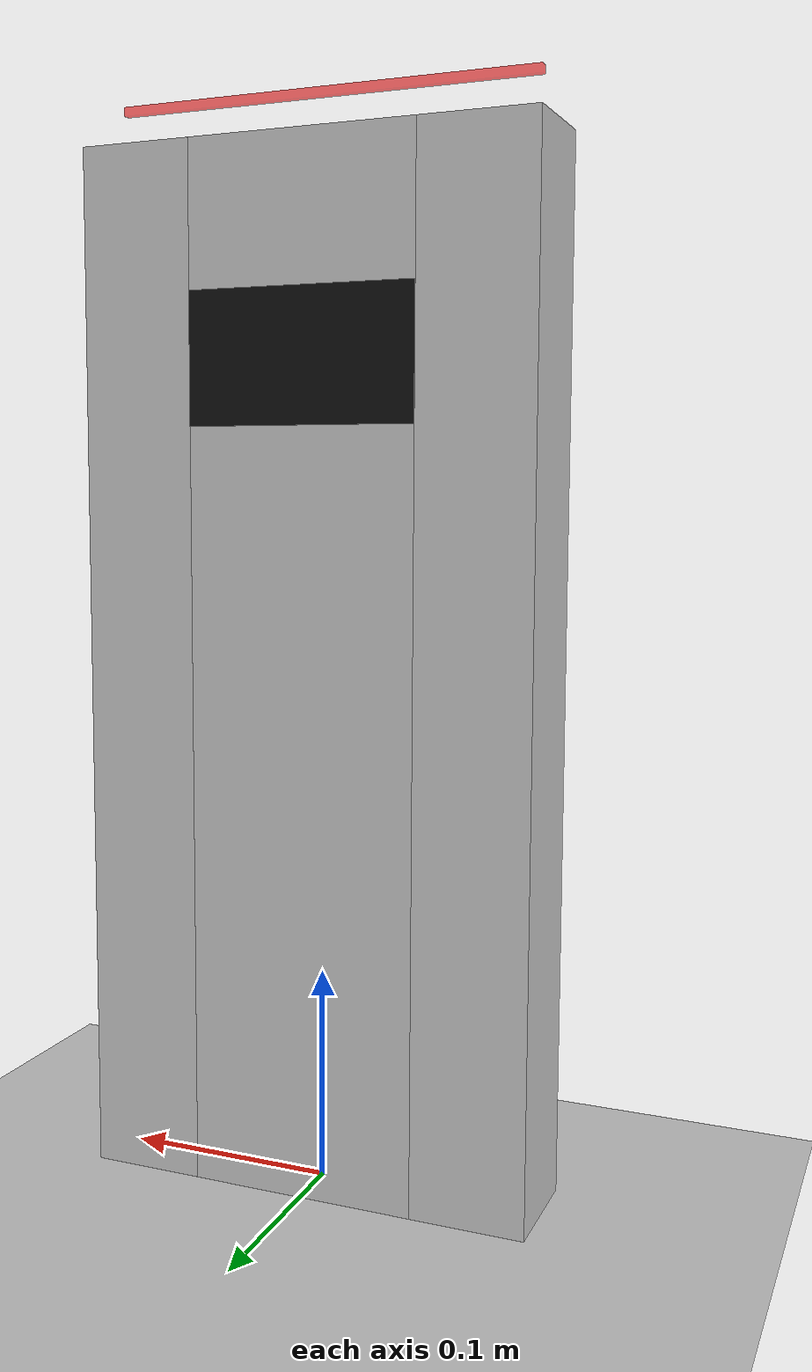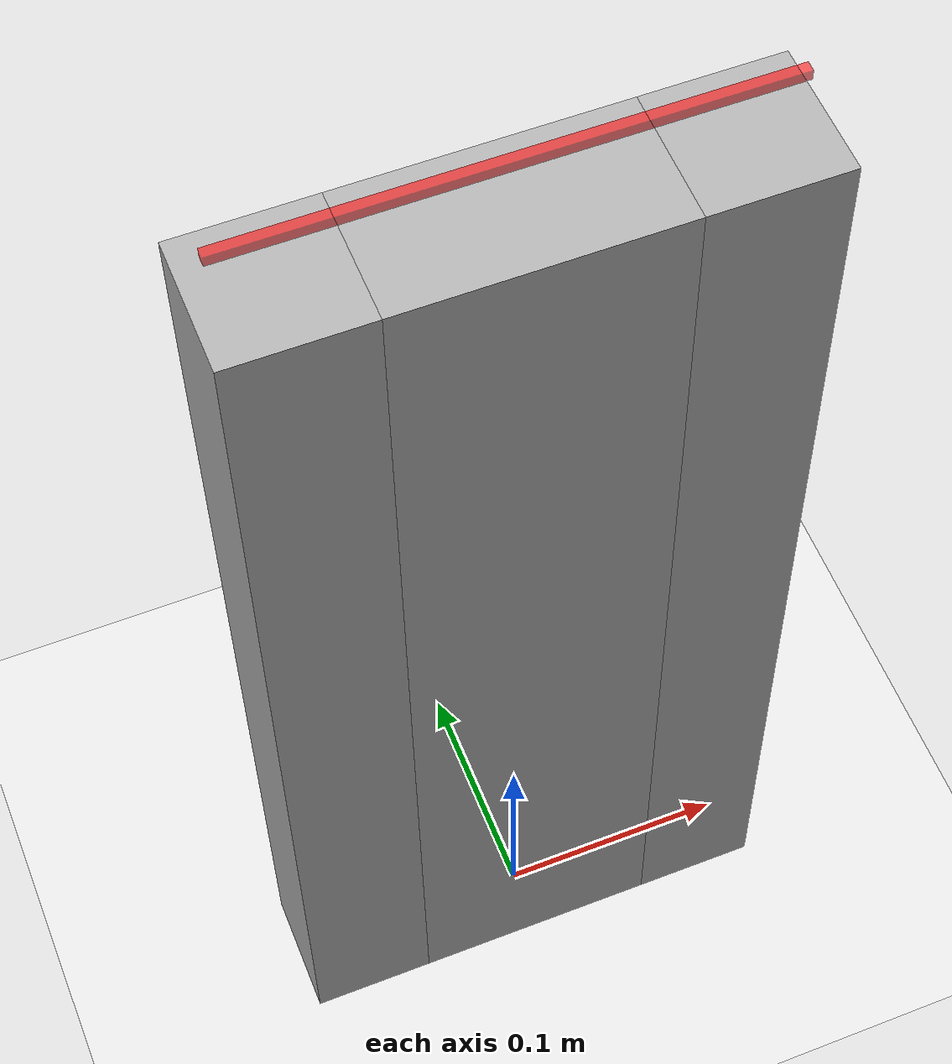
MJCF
<mujoco model="mini_tars">
    <compiler angle="radian"/>

    <option gravity="0 0 -9.81" timestep="0.002">
        <flag contact="enable" override="enable"/>
    </option>

    <size nconmax="100" njmax="500"/>
    <option>
        <flag warmstart="enable"/>
    </option>

    <default>
        <geom type="box" density="500" rgba="0.7 0.7 0.7 1" solref="0.002 1" solimp="0.99 0.999 0.001"/>
        <joint type="hinge" limited="true" axis="0 1 0" damping="4.0" frictionloss="0.2" armature="0.0025"/>
        <position kp="50" kv="12"/>

        <default class="linear_slide">
            <!-- JQDML: ~5mm/s at typical operating force -->
            <joint type="slide" damping="3000.0" frictionloss="2.0" armature="0.5"/>
        </default>
    </default>

    <worldbody>
        <light diffuse=".7 .7 .7" pos="0 0 3" dir="0 0 -1"/>
        <!-- friction="sliding torsional rolling" -->
        <geom type="plane" size="5 5 0.1" rgba="0.9 0.9 0.9 1" friction="5.0 1.0 0.005"/>

        <!-- TARS body: 480mm tall, 214mm wide (arms + body), 54mm deep -->
        <body name="tars" pos="0 0 0.24">
            <joint type="free" damping="0"/>
            <!-- Torso: 1.0kg, COM at geometric center -->
            <inertial pos="0 0 0" mass="1.0" diaginertia="0.019 0.020 0.001"/>
            <geom name="body_center" size="0.0535 0.027 0.24" rgba="0.7 0.7 0.7 1" friction="5.0 1.0 0.005"/>
            <geom name="front_screen" type="box" size="0.0535 0.0002 0.03" pos="0 0.0271 0.144" rgba="0.05 0.05 0.05 1" contype="0" conaffinity="0" mass="0" group="1"/>
            <site name="imu_site" pos="0 0 0" size="0.01"/>

            <!-- Left arm: MG996R swing servo + linear shrug -->
            <body name="left_arm" pos="-0.0535 0 0.1185">
                <!-- MG996R: 11 kg·cm stall, 0.14s/60°, 180° range -->
                <joint name="left_swing" type="hinge" axis="1 0 0" limited="true" range="-1.5708 1.5708" damping="0.15" armature="0.01"/>
                <inertial pos="0 0 0" mass="0.02" diaginertia="0.0001 0.0001 0.0001"/>
                <body name="left_arm_segment" pos="0 0 0">
                    <!-- JQDML 10mm stroke, 188N max, 5mm/s -->
                    <joint name="left_shrug" class="linear_slide" axis="0 0 1" limited="true" range="-0.005 0.005"/>
                        <!-- Arm: 0.7kg, COM at arm center 0.1185m below pivot -->
                    <inertial pos="-0.02675 0 -0.1185" mass="0.7" diaginertia="0.0136 0.0136 0.00034"/>
                    <geom name="left_arm_geom" size="0.02675 0.027 0.24" pos="-0.02675 0 -0.1185" rgba="0.7 0.7 0.7 1" friction="5.0 1.0 0.005"/>
                </body>
            </body>

            <!-- Right arm: MG996R swing servo + linear shrug -->
            <body name="right_arm" pos="0.0535 0 0.1185">
                <joint name="right_swing" type="hinge" axis="1 0 0" limited="true" range="-1.5708 1.5708" damping="0.15" armature="0.01"/>
                <inertial pos="0 0 0" mass="0.02" diaginertia="0.0001 0.0001 0.0001"/>
                <body name="right_arm_segment" pos="0 0 0">
                    <!-- JQDML 10mm stroke, 188N max, 5mm/s -->
                    <joint name="right_shrug" class="linear_slide" axis="0 0 1" limited="true" range="-0.005 0.005"/>
                        <!-- Arm: 0.7kg, COM at arm center 0.1185m below pivot -->
                    <inertial pos="0.02675 0 -0.1185" mass="0.7" diaginertia="0.0136 0.0136 0.00034"/>
                    <geom name="right_arm_geom" size="0.02675 0.027 0.24" pos="0.02675 0 -0.1185" rgba="0.7 0.7 0.7 1" friction="5.0 1.0 0.005"/>
                </body>
            </body>
        </body>

        <geom name="target_arrow" type="box" size="0.1 0.002 0.002" pos="0 0 0.5" rgba="1 0 0 0.6" contype="0" conaffinity="0" mass="0" group="1"/>
        <camera name="track" mode="trackcom" pos="0 -0.6 1.0" xyaxes="1 0 0 0 1.2 1"/>
    </worldbody>

    <actuator>
        <!-- MG996R swing servos: 1.1 Nm stall torque (11 kg·cm at 6V) -->
        <position name="left_swing_servo" joint="left_swing" kp="15" kv="1.5" ctrllimited="true" ctrlrange="-1.5708 1.5708" forcerange="-1.1 1.1"/>
        <!-- JQDML linear actuator: 188N max, 5mm/s, 10mm stroke -->
        <position name="left_shrug_servo" joint="left_shrug" kp="5000" kv="500" ctrllimited="true" ctrlrange="-0.005 0.005" forcerange="-188 188"/>

        <!-- Right arm (symmetric) -->
        <position name="right_swing_servo" joint="right_swing" kp="15" kv="1.5" ctrllimited="true" ctrlrange="-1.5708 1.5708" forcerange="-1.1 1.1"/>
        <position name="right_shrug_servo" joint="right_shrug" kp="5000" kv="500" ctrllimited="true" ctrlrange="-0.005 0.005" forcerange="-188 188"/>
    </actuator>

    <sensor>
        <gyro name="body_gyro" site="imu_site"/>
        <accelerometer name="body_accel" site="imu_site"/>
    </sensor>
</mujoco>
